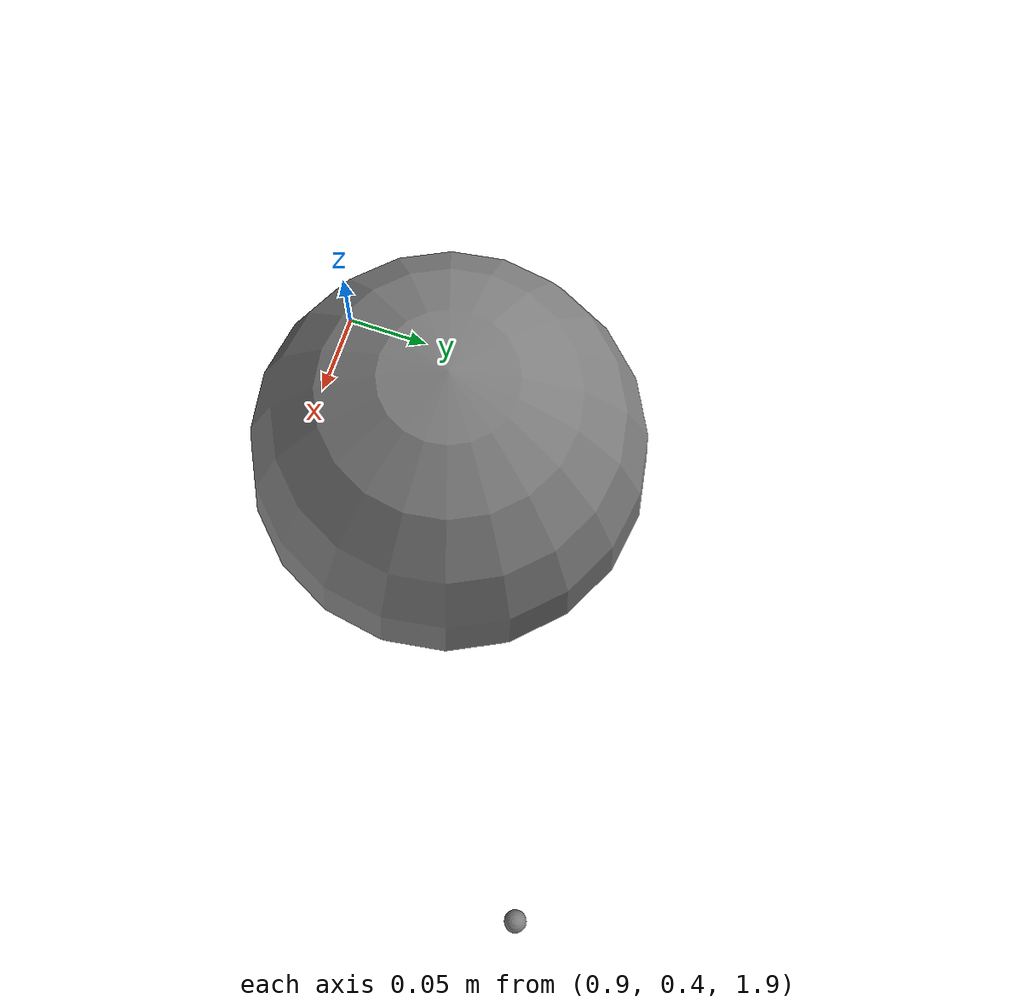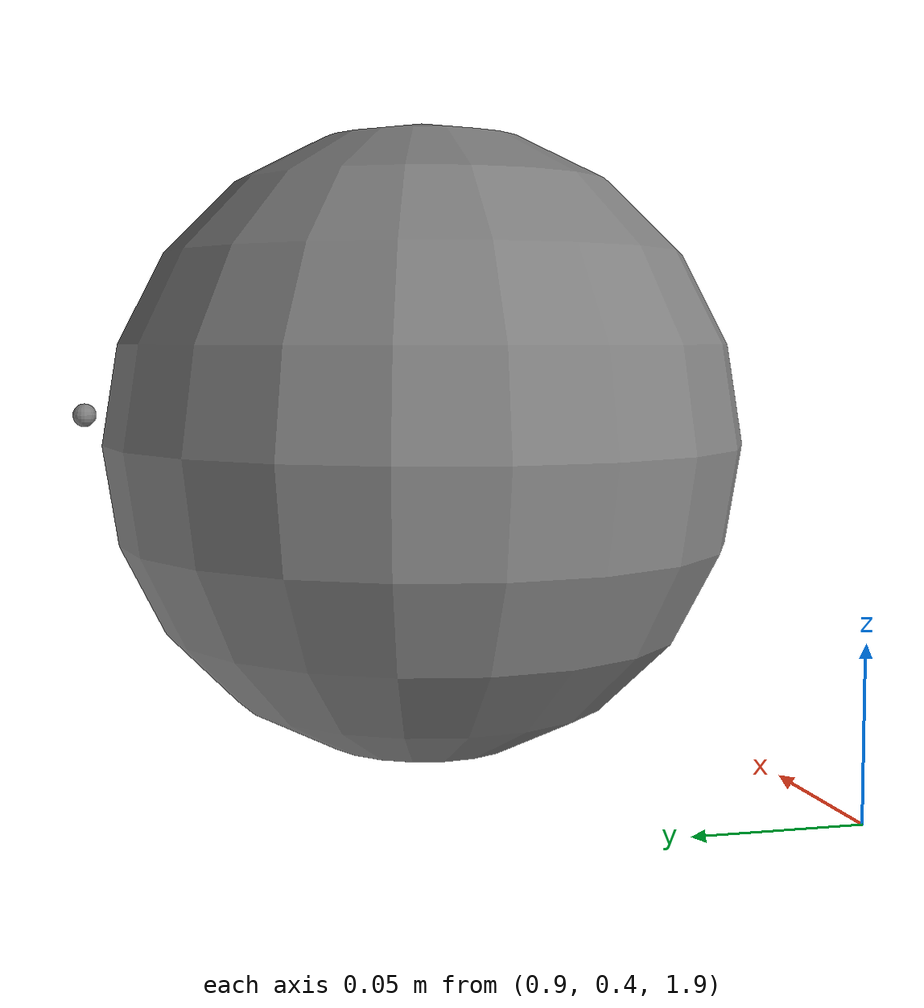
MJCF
<mujoco model="free_joint_conformance">
            <option gravity="0 0 -9.81" timestep="0.001"/>
            <worldbody>
                <body name="b1" pos="1 0.5 2">
                    <freejoint name="j1"/>
                    <geom type="sphere" size="0.1" mass="1.0"/>
                    <site name="thrust" pos="0.2 0.1 0"/>
                </body>
            </worldbody>
            <actuator>
                <general name="jet" site="thrust" gear="0 0 1 0 0 0" ctrlrange="-100 100"/>
            </actuator>
        </mujoco>
